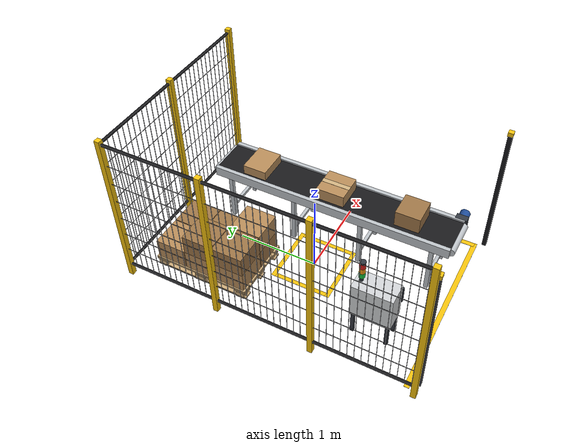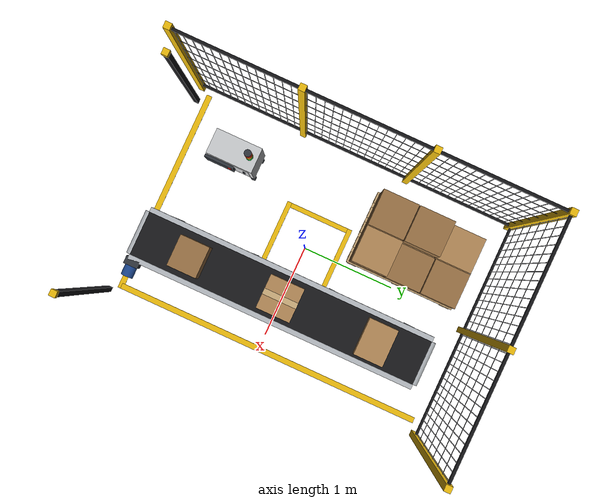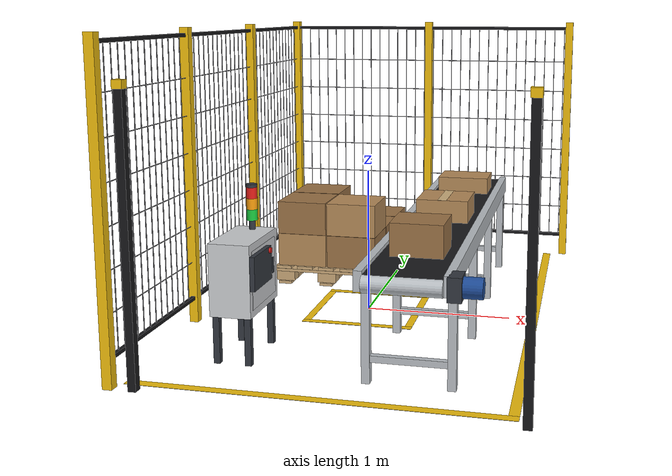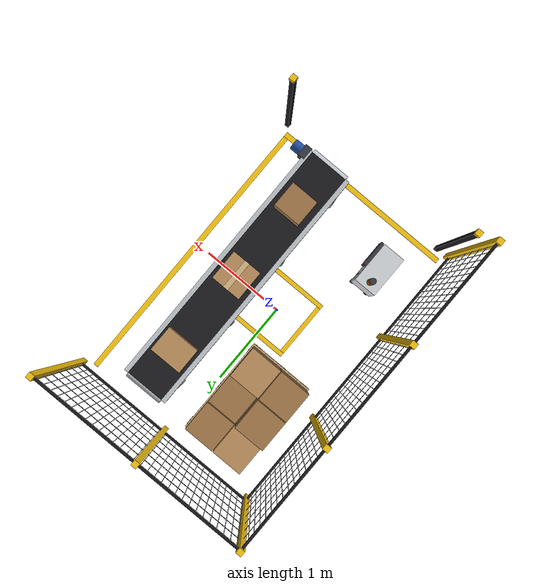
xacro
<?xml version="1.0"?>
<robot xmlns:xacro="http://wiki.ros.org/xacro" name="workcell">
  <xacro:property name="conveyor_x" value="0.55"/>
  <xacro:property name="conveyor_length" value="3.0"/>
  <xacro:property name="belt_width" value="0.45"/>
  <xacro:property name="belt_height" value="0.70"/>
  <xacro:property name="part_size" value="0.35"/>
  <xacro:property name="part_height" value="0.15"/>
  <xacro:property name="fence_height" value="2.0"/>

  <material name="aluminium"><color rgba="0.74 0.76 0.78 1"/></material>
  <material name="belt_rubber"><color rgba="0.10 0.10 0.11 1"/></material>
  <material name="drive_blue"><color rgba="0.12 0.30 0.60 1"/></material>
  <material name="cardboard"><color rgba="0.72 0.55 0.35 1"/></material>
  <material name="cardboard_dark"><color rgba="0.62 0.46 0.28 1"/></material>
  <material name="packing_tape"><color rgba="0.82 0.70 0.50 1"/></material>
  <material name="pallet_wood"><color rgba="0.80 0.67 0.48 1"/></material>
  <material name="safety_yellow"><color rgba="0.96 0.76 0.05 1"/></material>
  <material name="fence_black"><color rgba="0.09 0.09 0.10 1"/></material>
  <material name="cabinet_grey"><color rgba="0.82 0.83 0.84 1"/></material>
  <material name="panel_dark"><color rgba="0.20 0.22 0.25 1"/></material>
  <material name="signal_green"><color rgba="0.10 0.80 0.25 1"/></material>
  <material name="signal_amber"><color rgba="0.98 0.62 0.05 1"/></material>
  <material name="signal_red"><color rgba="0.90 0.12 0.10 1"/></material>

  <!-- helpers ............................................................ -->
  <xacro:macro name="block" params="xyz size material rpy:='0 0 0'">
    <visual>
      <origin xyz="${xyz}" rpy="${rpy}"/>
      <geometry><box size="${size}"/></geometry>
      <material name="${material}"/>
    </visual>
  </xacro:macro>

  <xacro:macro name="solid_block" params="xyz size material">
    <xacro:block xyz="${xyz}" size="${size}" material="${material}"/>
    <collision>
      <origin xyz="${xyz}"/>
      <geometry><box size="${size}"/></geometry>
    </collision>
  </xacro:macro>

  <xacro:macro name="rod" params="xyz radius length material rpy:='0 0 0'">
    <visual>
      <origin xyz="${xyz}" rpy="${rpy}"/>
      <geometry><cylinder radius="${radius}" length="${length}"/></geometry>
      <material name="${material}"/>
    </visual>
  </xacro:macro>

  <!-- Every link needs mass or the URDF -> SDF conversion may drop it; the
       whole model is static in Gazebo, so the values do not matter. -->
  <xacro:macro name="fixed_part" params="name **geometry">
    <link name="${name}">
      <xacro:insert_block name="geometry"/>
      <inertial>
        <mass value="1.0"/>
        <inertia ixx="0.1" iyy="0.1" izz="0.1" ixy="0" ixz="0" iyz="0"/>
      </inertial>
    </link>
    <joint name="world-${name}" type="fixed">
      <parent link="world"/>
      <child link="${name}"/>
    </joint>
  </xacro:macro>

  <!-- Repeat a block `count` times, stepping by (dx, dy, dz). -->
  <xacro:macro name="row" params="x y z dx dy dz count size material">
    <xacro:if value="${count > 0}">
      <xacro:block xyz="${x} ${y} ${z}" size="${size}" material="${material}"/>
      <xacro:row x="${x + dx}" y="${y + dy}" z="${z + dz}" dx="${dx}" dy="${dy}" dz="${dz}"
                 count="${count - 1}" size="${size}" material="${material}"/>
    </xacro:if>
  </xacro:macro>

  <!-- One welded-mesh guard panel with a post at its start, along x or y. -->
  <xacro:macro name="fence_panel" params="x y length along">
    <xacro:property name="ux" value="${1 if along == 'x' else 0}"/>
    <xacro:property name="uy" value="${1 if along == 'y' else 0}"/>
    <xacro:property name="wires" value="${int(length / 0.08)}"/>
    <xacro:block xyz="${x} ${y} ${fence_height / 2}" size="0.06 0.06 ${fence_height}"
                 material="safety_yellow"/>
    <xacro:property name="cx" value="${x + ux * length / 2}"/>
    <xacro:property name="cy" value="${y + uy * length / 2}"/>
    <xacro:property name="rail" value="${(ux * length + 0.025)} ${(uy * length + 0.025)} 0.025"/>
    <xacro:block xyz="${cx} ${cy} 0.17" size="${rail}" material="fence_black"/>
    <xacro:block xyz="${cx} ${cy} ${fence_height - 0.05}" size="${rail}" material="fence_black"/>
    <xacro:row x="${x + ux * 0.04}" y="${y + uy * 0.04}" z="${(fence_height + 0.12) / 2}"
               dx="${ux * 0.08}" dy="${uy * 0.08}" dz="0" count="${wires}"
               size="0.005 0.005 ${fence_height - 0.25}" material="fence_black"/>
    <xacro:row x="${cx}" y="${cy}" z="0.42" dx="0" dy="0" dz="0.25" count="6"
               size="${(ux * length + 0.004)} ${(uy * length + 0.004)} 0.005"
               material="fence_black"/>
  </xacro:macro>

  <link name="world"/>

  <!-- Belt conveyor along y; the part waits on it under the sensors. -->
  <xacro:fixed_part name="conveyor">
    <geometry>
    <xacro:solid_block xyz="${conveyor_x} 0 ${belt_height - 0.015}"
                       size="${belt_width} ${conveyor_length} 0.03" material="belt_rubber"/>
    <xacro:block xyz="${conveyor_x + belt_width / 2 + 0.025} 0 ${belt_height - 0.04}"
                 size="0.05 ${conveyor_length} 0.12" material="aluminium"/>
    <xacro:block xyz="${conveyor_x - belt_width / 2 - 0.025} 0 ${belt_height - 0.04}"
                 size="0.05 ${conveyor_length} 0.12" material="aluminium"/>
    <xacro:rod xyz="${conveyor_x} ${conveyor_length / 2} ${belt_height - 0.05}" radius="0.05"
               length="${belt_width}" rpy="0 ${pi / 2} 0" material="aluminium"/>
    <xacro:rod xyz="${conveyor_x} ${-conveyor_length / 2} ${belt_height - 0.05}" radius="0.05"
               length="${belt_width}" rpy="0 ${pi / 2} 0" material="aluminium"/>
    <!-- legs and cross braces at four stations along the belt -->
    <xacro:row x="${conveyor_x + belt_width / 2 + 0.025}" y="-1.3" z="${(belt_height - 0.1) / 2}"
               dx="0" dy="0.8667" dz="0" count="4" size="0.05 0.05 ${belt_height - 0.1}"
               material="aluminium"/>
    <xacro:row x="${conveyor_x - belt_width / 2 - 0.025}" y="-1.3" z="${(belt_height - 0.1) / 2}"
               dx="0" dy="0.8667" dz="0" count="4" size="0.05 0.05 ${belt_height - 0.1}"
               material="aluminium"/>
    <xacro:row x="${conveyor_x}" y="-1.3" z="0.15" dx="0" dy="0.8667" dz="0" count="4"
               size="${belt_width + 0.05} 0.04 0.04" material="aluminium"/>
    <!-- drive motor and gearbox at the far end -->
    <xacro:rod xyz="${conveyor_x + belt_width / 2 + 0.13} ${-conveyor_length / 2 + 0.05}
               ${belt_height - 0.05}" radius="0.06" length="0.16" rpy="0 ${pi / 2} 0"
               material="drive_blue"/>
    <xacro:block xyz="${conveyor_x + belt_width / 2 + 0.06} ${-conveyor_length / 2 + 0.05}
                 ${belt_height - 0.05}" size="0.08 0.14 0.14" material="panel_dark"/>
    </geometry>
  </xacro:fixed_part>

  <!-- The part being measured, plus cartons queued up and down the line. -->
  <xacro:fixed_part name="inspected_part">
    <geometry>
    <xacro:solid_block xyz="${conveyor_x} 0 ${belt_height + part_height / 2}"
                       size="${part_size} ${part_size} ${part_height}" material="cardboard"/>
    <xacro:block xyz="${conveyor_x} 0 ${belt_height + part_height + 0.0005}"
                 size="0.06 ${part_size + 0.002} 0.001" material="packing_tape"/>
    </geometry>
  </xacro:fixed_part>

  <xacro:fixed_part name="queued_cartons">
    <geometry>
    <xacro:solid_block xyz="${conveyor_x} -0.95 ${belt_height + 0.10}" size="0.32 0.30 0.20"
                       material="cardboard_dark"/>
    <xacro:solid_block xyz="${conveyor_x} 1.00 ${belt_height + 0.06}" size="0.38 0.30 0.12"
                       material="cardboard"/>
    </geometry>
  </xacro:fixed_part>

  <!-- Euro pallet (800 x 1200) with a stack of finished cartons. -->
  <xacro:property name="px" value="-0.45"/>
  <xacro:property name="py" value="1.05"/>
  <xacro:fixed_part name="pallet_station">
    <geometry>
    <xacro:row x="${px - 0.33}" y="${py}" z="0.011" dx="0.33" dy="0" dz="0" count="3"
               size="0.10 1.2 0.022" material="pallet_wood"/>
    <xacro:row x="${px - 0.33}" y="${py - 0.53}" z="0.061" dx="0.33" dy="0" dz="0" count="3"
               size="0.145 0.10 0.078" material="pallet_wood"/>
    <xacro:row x="${px - 0.33}" y="${py}" z="0.061" dx="0.33" dy="0" dz="0" count="3"
               size="0.145 0.145 0.078" material="pallet_wood"/>
    <xacro:row x="${px - 0.33}" y="${py + 0.53}" z="0.061" dx="0.33" dy="0" dz="0" count="3"
               size="0.145 0.10 0.078" material="pallet_wood"/>
    <xacro:row x="${px}" y="${py - 0.53}" z="0.111" dx="0" dy="0.53" dz="0" count="3"
               size="0.8 0.145 0.022" material="pallet_wood"/>
    <xacro:row x="${px - 0.34}" y="${py}" z="0.133" dx="0.17" dy="0" dz="0" count="5"
               size="0.12 1.2 0.022" material="pallet_wood"/>
    <xacro:row x="${px - 0.195}" y="${py - 0.39}" z="0.27" dx="0" dy="0.39" dz="0" count="3"
               size="0.38 0.38 0.25" material="cardboard"/>
    <xacro:row x="${px + 0.195}" y="${py - 0.39}" z="0.27" dx="0" dy="0.39" dz="0" count="3"
               size="0.38 0.38 0.25" material="cardboard_dark"/>
    <xacro:row x="${px - 0.195}" y="${py - 0.39}" z="0.522" dx="0" dy="0.39" dz="0" count="2"
               size="0.38 0.38 0.25" material="cardboard_dark"/>
    <xacro:block xyz="${px + 0.195} ${py - 0.39} 0.522" size="0.38 0.38 0.25"
                 material="cardboard"/>
    </geometry>
  </xacro:fixed_part>

  <!-- Robot control cabinet on a stand, teach pendant and a stack light. -->
  <xacro:property name="cab_x" value="-0.55"/>
  <xacro:property name="cab_y" value="-1.0"/>
  <xacro:fixed_part name="control_cabinet">
    <geometry>
    <xacro:row x="${cab_x - 0.10}" y="${cab_y - 0.20}" z="0.15" dx="0.20" dy="0" dz="0"
               count="2" size="0.04 0.04 0.30" material="panel_dark"/>
    <xacro:row x="${cab_x - 0.10}" y="${cab_y + 0.20}" z="0.15" dx="0.20" dy="0" dz="0"
               count="2" size="0.04 0.04 0.30" material="panel_dark"/>
    <xacro:solid_block xyz="${cab_x} ${cab_y} 0.525" size="0.26 0.48 0.45"
                       material="cabinet_grey"/>
    <xacro:block xyz="${cab_x + 0.131} ${cab_y} 0.525" size="0.004 0.40 0.36"
                 material="cabinet_grey"/>
    <xacro:block xyz="${cab_x + 0.135} ${cab_y + 0.15} 0.53" size="0.01 0.02 0.10"
                 material="panel_dark"/>
    <xacro:block xyz="${cab_x + 0.15} ${cab_y - 0.10} 0.58" size="0.03 0.30 0.21"
                 material="panel_dark"/>
    <xacro:rod xyz="${cab_x + 0.17} ${cab_y + 0.02} 0.66" radius="0.018" length="0.012"
               rpy="0 ${pi / 2} 0" material="signal_red"/>
    <xacro:rod xyz="${cab_x} ${cab_y + 0.17} 0.78" radius="0.02" length="0.06"
               material="panel_dark"/>
    <xacro:rod xyz="${cab_x} ${cab_y + 0.17} 0.845" radius="0.035" length="0.07"
               material="signal_green"/>
    <xacro:rod xyz="${cab_x} ${cab_y + 0.17} 0.915" radius="0.035" length="0.07"
               material="signal_amber"/>
    <xacro:rod xyz="${cab_x} ${cab_y + 0.17} 0.985" radius="0.035" length="0.07"
               material="signal_red"/>
    <xacro:rod xyz="${cab_x} ${cab_y + 0.17} 1.03" radius="0.035" length="0.02"
               material="panel_dark"/>
    </geometry>
  </xacro:fixed_part>

  <!-- Guarding: mesh fence on the two far sides, a light curtain on the open side. -->
  <xacro:fixed_part name="safety_guarding">
    <geometry>
    <xacro:fence_panel x="-1.10" y="-1.70" length="1.183" along="y"/>
    <xacro:fence_panel x="-1.10" y="-0.517" length="1.183" along="y"/>
    <xacro:fence_panel x="-1.10" y="0.667" length="1.183" along="y"/>
    <xacro:fence_panel x="-1.10" y="1.85" length="1.20" along="x"/>
    <xacro:fence_panel x="0.10" y="1.85" length="1.20" along="x"/>
    <xacro:block xyz="1.30 1.85 ${fence_height / 2}" size="0.06 0.06 ${fence_height}"
                 material="safety_yellow"/>
    <xacro:block xyz="-0.95 -1.70 0.85" size="0.05 0.05 1.7" material="fence_black"/>
    <xacro:block xyz="-0.95 -1.70 1.725" size="0.06 0.06 0.05" material="safety_yellow"/>
    <xacro:block xyz="1.25 -1.70 0.85" size="0.05 0.05 1.7" material="fence_black"/>
    <xacro:block xyz="1.25 -1.70 1.725" size="0.06 0.06 0.05" material="safety_yellow"/>
    </geometry>
  </xacro:fixed_part>

  <!-- Yellow floor tape: cell boundary and a keep-out square round the riser. -->
  <xacro:fixed_part name="floor_markings">
    <geometry>
    <xacro:block xyz="0.075 -1.60 0.001" size="2.25 0.06 0.002" material="safety_yellow"/>
    <xacro:block xyz="1.17 0.10 0.001" size="0.06 3.40 0.002" material="safety_yellow"/>
    <xacro:block xyz="0 -0.35 0.001" size="0.76 0.05 0.002" material="safety_yellow"/>
    <xacro:block xyz="0 0.35 0.001" size="0.76 0.05 0.002" material="safety_yellow"/>
    <xacro:block xyz="-0.355 0 0.001" size="0.05 0.66 0.002" material="safety_yellow"/>
    <xacro:block xyz="0.355 0 0.001" size="0.05 0.66 0.002" material="safety_yellow"/>
    </geometry>
  </xacro:fixed_part>

  <gazebo>
    <static>true</static>
  </gazebo>
</robot>
